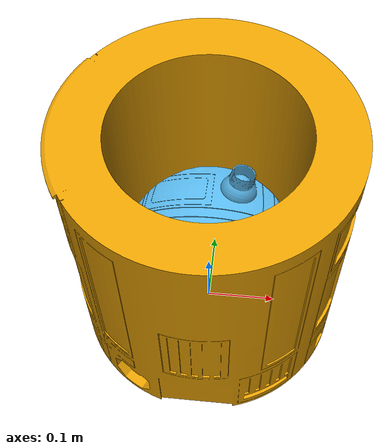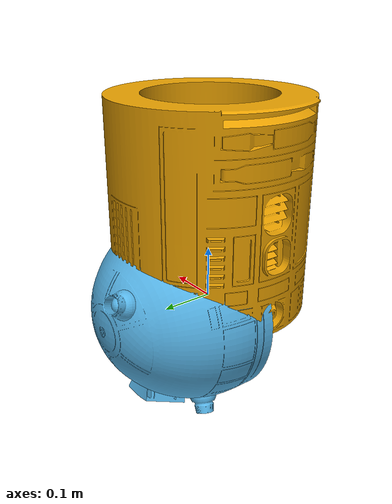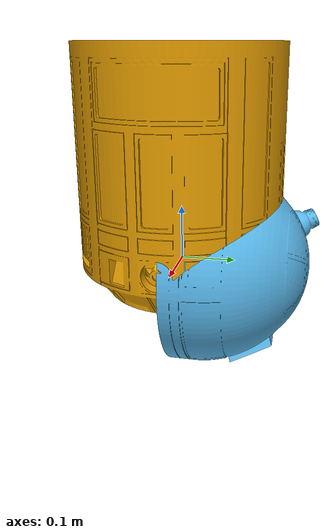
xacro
<?xml version="1.0"?>
<robot name="robot" xmlns:xacro="http://ros.org/wiki/xacro">

    <!-- materials -->
    <xacro:include filename="$(find r2d2_description)/urdf/materials.urdf" />

    <link name="base_link">
	<visual>
	    <geometry>
	        <mesh filename="package://r2d2_description/meshes/body_print.stl" scale="0.008 0.008 0.008"/>
		<color name="blue"/>
	    </geometry>
	</visual>
    </link>

    <link name="dome">
	<visual>
	    <geometry>
	        <mesh filename="package://r2d2_description/meshes/dome_print.stl" scale="0.008 0.008 0.008"/>
		<color name="blue"/>
	    </geometry>
	</visual>
    </link>

    <joint name="neck" type="revolute">
      <parent link="base_link" />
      <child link="dome" />
    </joint>

</robot>
